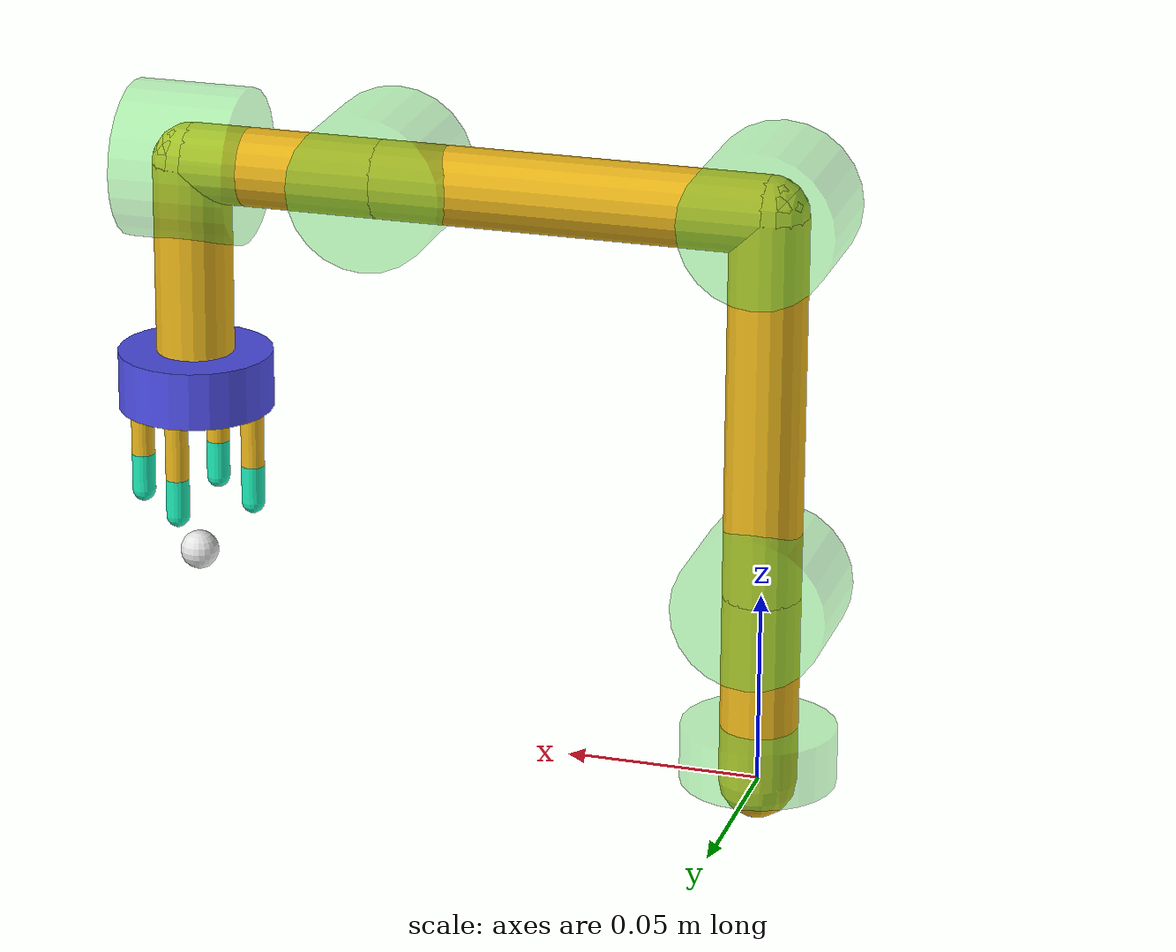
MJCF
<?xml version="1.0" encoding="utf-8"?>
<mujoco model="test">
	<compiler coordinate="global"/>
	<option>
		<flag gravity="disable"/>
	</option>

	<default>
		<geom rgba=".9 .7 .1 1" size="0.01"/>
		<site type="sphere" rgba=".9 .9 .9 1" size="0.005"/>
		<joint type="hinge" axis="0 1 0" limited="true" range="-120 120" solimplimit="0.95 0.95 0.1"/>
	</default>

	<visual>
		<headlight diffuse=".7 .7 .7"/>
	</visual>

	<worldbody>

		<body>
			<geom type="capsule" fromto="0 0 0  0 0 0.05"/>
			<geom name="g1" type="cylinder" fromto="0 0 0    0 0 0.015"
					size="0.02" rgba=".3 .9 .3 .4"/>
			<joint name="j0-0" limited="false" axis="0 0 1" pos="0 0 0"/>

			<body>
				<geom type="capsule" fromto="0 0 0.05  0 0 0.15"/>
				<geom name="g2" type="cylinder" fromto="0 -0.015 0.05    0 0.015 0.05"
					size="0.02" rgba=".3 .9 .3 .4"/>
				<joint name="j0-1" pos="0 0 0.05"/>

				<body>
					<geom type="capsule" fromto="0 0 0.15  0.1 0 0.15"/>
					<geom name="g3" type="cylinder" fromto="0 -0.015 0.15    0 0.015 0.15"
						size="0.02" rgba=".3 .9 .3 .4"/>
					<joint name="j0-2" limited="true" range="-210 30" pos="0 0 0.15"/><!-- -90 for the joint limit-->

					<body>
						<geom type="capsule" fromto="0.1 0 0.15    0.15 0 0.15"/>

					<geom type="cylinder" fromto="0.1 -0.015 0.15    0.1 0.015 0.15"
						size="0.02" rgba=".3 .9 .3 .4"/>
					<joint name="j0-27" pos="0.1 0 0.15"/>

						<body>
							<geom type="capsule" fromto="0.15 0 0.15    0.15 0 0.1"/>

							<geom type="cylinder" fromto="0.135 0 0.15    0.165 0 0.15"
							size="0.02" rgba=".3 .9 .3 .4"/>
							<joint axis="1 0 0" limited="false" name='j0-4' pos="0.15 0 0.15"/>

							<site name="end-1" pos="0.15 0 0.1" />

							<body>

								<geom type="cylinder" fromto="0.15 0 0.1    0.15 0 0.085"
											size="0.02" rgba=".3 .3 .9 1"/>

								<site name="end-2" pos="0.15 0 0.045" />

									<body><!-- near -->
										<geom type="capsule" size="0.003" fromto="0.135 0 0.085    0.135 0 0.07"/>

										<body>
											<geom type="capsule" rgba=".1 .9 .7 1" size="0.003" fromto="0.135 0 0.07    0.135 0 0.06"/>
											<joint name="gripper-near" axis="0 -1 0" limited="true" range="0 60" pos="0.135 0 0.07"/>
										</body>
									</body>

									<body><!-- left -->
										<geom type="capsule" size="0.003" fromto="0.15 0.015 0.085    0.15 0.015 0.07"/>

										<body>
											<geom type="capsule" rgba=".1 .9 .7 1" size="0.003" fromto="0.15 0.015 0.07    0.15 0.015 0.06"/>
											<joint name="gripper-left" axis="-1 0 0" limited="true" range="0 60" pos="0.15 0.015 0.07"/>
										</body>
									</body>

									<body>
										<geom type="capsule" size="0.003" fromto="0.15 -0.015 0.085    0.15 -0.015 0.07"/>

										<body>
											<geom type="capsule" rgba=".1 .9 .7 1" size="0.003" fromto="0.15 -0.015 0.07    0.15 -0.015 0.06"/>
											<joint name="gripper-right" axis="1 0 0" limited="true" range="0 60" pos="0.15 -0.015 0.07"/>
										</body>
									</body>

									<body><!-- far -->
										<geom type="capsule" size="0.003" fromto="0.165 0 0.085    0.165 0 0.07"/>

										<body>
											<geom type="capsule" rgba=".1 .9 .7 1" size="0.003" fromto="0.165 0 0.07    0.165 0 0.06"/>
											<joint name="gripper-far" axis="0 1 0" limited="true" range="0 60" pos="0.165 0 0.07"/>
										</body>
									</body>

							</body>

						</body>

					</body>

				</body>
			</body>
		</body>

	</worldbody>

	<sensor>
		<framepos objname="end-1" objtype="site"/>
		<framepos objname="end-2" objtype="site"/>
	</sensor>

	<actuator>
		<motor gear="1.0"  joint="gripper-near" />
		<motor gear="1.0"  joint="gripper-far" />
		<motor gear="1.0"  joint="gripper-left" />
		<motor gear="1.0"  joint="gripper-right" />
	</actuator>

</mujoco>
